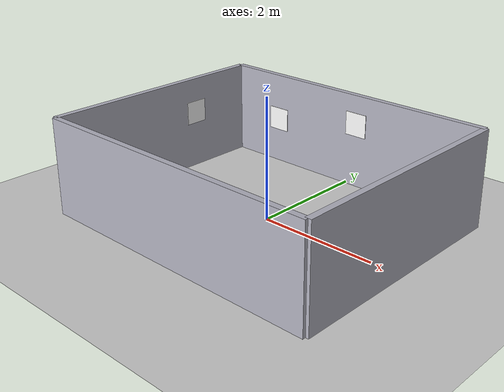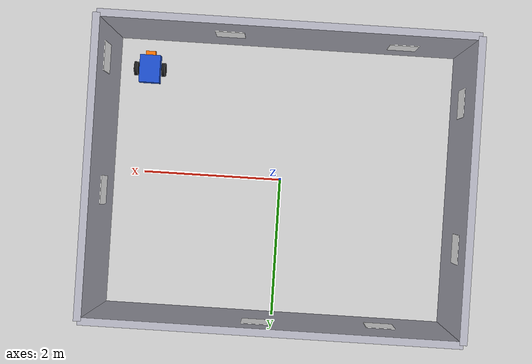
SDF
<?xml version="1.0" ?>
<sdf version="1.10">
  <world name="pf_room">

    <physics name="1ms" type="ignored">
      <max_step_size>0.001</max_step_size>
      <real_time_factor>1.0</real_time_factor>
    </physics>

    <plugin filename="gz-sim-physics-system"
            name="gz::sim::systems::Physics"/>
    <plugin filename="gz-sim-user-commands-system"
            name="gz::sim::systems::UserCommands"/>
    <plugin filename="gz-sim-scene-broadcaster-system"
            name="gz::sim::systems::SceneBroadcaster"/>
    <plugin filename="gz-sim-sensors-system"
            name="gz::sim::systems::Sensors">
      <render_engine>ogre2</render_engine>
    </plugin>

    <plugin filename="gz-sim-triggered-publisher-system" name="gz::sim::systems::TriggeredPublisher">
      <input type="gz.msgs.Int32" topic="/keyboard/keypress"><match field="data">16777235</match></input> <!-- Up -->
      <output type="gz.msgs.Twist" topic="/cmd_vel">linear: {x: 0.5}, angular: {z: 0.0}</output>
    </plugin>
    <plugin filename="gz-sim-triggered-publisher-system" name="gz::sim::systems::TriggeredPublisher">
      <input type="gz.msgs.Int32" topic="/keyboard/keypress"><match field="data">16777237</match></input> <!-- Down -->
      <output type="gz.msgs.Twist" topic="/cmd_vel">linear: {x: -0.5}, angular: {z: 0.0}</output>
    </plugin>
    <plugin filename="gz-sim-triggered-publisher-system" name="gz::sim::systems::TriggeredPublisher">
      <input type="gz.msgs.Int32" topic="/keyboard/keypress"><match field="data">16777234</match></input> <!-- Left -->
      <output type="gz.msgs.Twist" topic="/cmd_vel">linear: {x: 0.0}, angular: {z: 0.6}</output>
    </plugin>
    <plugin filename="gz-sim-triggered-publisher-system" name="gz::sim::systems::TriggeredPublisher">
      <input type="gz.msgs.Int32" topic="/keyboard/keypress"><match field="data">16777236</match></input> <!-- Right -->
      <output type="gz.msgs.Twist" topic="/cmd_vel">linear: {x: 0.0}, angular: {z: -0.6}</output>
    </plugin>
    <plugin filename="gz-sim-triggered-publisher-system" name="gz::sim::systems::TriggeredPublisher">
      <input type="gz.msgs.Int32" topic="/keyboard/keypress"><match field="data">32</match></input> <!-- Space = stop -->
      <output type="gz.msgs.Twist" topic="/cmd_vel">linear: {x: 0.0}, angular: {z: 0.0}</output>
    </plugin>

    <light type="directional" name="sun">
      <cast_shadows>true</cast_shadows>
      <pose>0 0 10 0 0 0</pose>
      <diffuse>0.9 0.9 0.9 1</diffuse>
      <specular>0.2 0.2 0.2 1</specular>
      <direction>-0.3 0.2 -0.9</direction>
    </light>

    <!-- ground -->
    <model name="ground_plane">
      <static>true</static>
      <link name="link">
        <collision name="collision">
          <geometry><plane><normal>0 0 1</normal><size>20 20</size></plane></geometry>
        </collision>
        <visual name="visual">
          <geometry><plane><normal>0 0 1</normal><size>20 20</size></plane></geometry>
          <material>
            <ambient>0.8 0.8 0.8 1</ambient>
            <diffuse>0.8 0.8 0.8 1</diffuse>
          </material>
        </visual>
      </link>
    </model>

    <!-- ============ ROOM: 4 walls, interior 5 x 4 m, height 1.6 m ============ -->
    <model name="room">
      <static>true</static>
      <link name="walls">
        <!-- left wall  (x = -2.5), right wall (x = +2.5) -->
        <collision name="c_left"><pose>-2.5 0 0.8 0 0 0</pose>
          <geometry><box><size>0.1 4 1.6</size></box></geometry></collision>
        <visual name="v_left"><pose>-2.5 0 0.8 0 0 0</pose>
          <geometry><box><size>0.1 4 1.6</size></box></geometry>
          <material><ambient>0.7 0.7 0.75 1</ambient><diffuse>0.7 0.7 0.75 1</diffuse></material></visual>

        <collision name="c_right"><pose>2.5 0 0.8 0 0 0</pose>
          <geometry><box><size>0.1 4 1.6</size></box></geometry></collision>
        <visual name="v_right"><pose>2.5 0 0.8 0 0 0</pose>
          <geometry><box><size>0.1 4 1.6</size></box></geometry>
          <material><ambient>0.7 0.7 0.75 1</ambient><diffuse>0.7 0.7 0.75 1</diffuse></material></visual>

        <!-- front wall (y = -2), back wall (y = +2) -->
        <collision name="c_front"><pose>0 -2 0.8 0 0 0</pose>
          <geometry><box><size>5 0.1 1.6</size></box></geometry></collision>
        <visual name="v_front"><pose>0 -2 0.8 0 0 0</pose>
          <geometry><box><size>5 0.1 1.6</size></box></geometry>
          <material><ambient>0.7 0.7 0.75 1</ambient><diffuse>0.7 0.7 0.75 1</diffuse></material></visual>

        <collision name="c_back"><pose>0 2 0.8 0 0 0</pose>
          <geometry><box><size>5 0.1 1.6</size></box></geometry></collision>
        <visual name="v_back"><pose>0 2 0.8 0 0 0</pose>
          <geometry><box><size>5 0.1 1.6</size></box></geometry>
          <material><ambient>0.7 0.7 0.75 1</ambient><diffuse>0.7 0.7 0.75 1</diffuse></material></visual>
      </link>
    </model>

    <!-- LEFT wall x=-2.5 (face +x): yaw 0 -->
    <include><name>tag1</name><uri>model://aruco_marker</uri><pose>-2.44 -1.2 0.80 0 0 0</pose></include>
    <include><name>tag2</name><uri>model://aruco_marker</uri><pose>-2.44  0.8 1.00 0 0 0</pose></include>
    <!-- RIGHT wall x=+2.5 (face -x): yaw pi -->
    <include><name>tag3</name><uri>model://aruco_marker</uri><pose>2.44  0.3 0.75 0 0 3.14159</pose></include>
    <include><name>tag4</name><uri>model://aruco_marker</uri><pose>2.44 -1.5 1.05 0 0 3.14159</pose></include>
    <!-- FRONT wall y=-2 (face +y): yaw pi/2 -->
    <include><name>tag5</name><uri>model://aruco_marker</uri><pose>-1.60 -1.94 0.70 0 0 1.5708</pose></include>
    <include><name>tag6</name><uri>model://aruco_marker</uri><pose> 0.80 -1.94 0.90 0 0 1.5708</pose></include>
    <!-- BACK wall y=+2 (face -y): yaw -pi/2 -->
    <include><name>tag7</name><uri>model://aruco_marker</uri><pose> 0.20  1.94 1.10 0 0 -1.5708</pose></include>
    <include><name>tag8</name><uri>model://aruco_marker</uri><pose>-1.50  1.94 0.80 0 0 -1.5708</pose></include>

    <include>
      <name>robot</name>
      <uri>model://robot</uri>
      <pose>2.0 -1.5 0.1 0 0 -1.5708</pose>
    </include>

  </world>
</sdf>

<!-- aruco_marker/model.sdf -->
<sdf version="1.10">
  <model name="aruco_marker">
    <static>true</static>
    <link name="link">
      <visual name="marker">
        <geometry><box><size>0.01 0.4 0.4</size></box></geometry>
        <material>
          <ambient>1 1 1 1</ambient>
          <diffuse>1 1 1 1</diffuse>
          <specular>0 0 0 1</specular>
          <pbr>
            <metal>
              <albedo_map>materials/textures/aruco_0.png</albedo_map>
              <metalness>0</metalness>
              <roughness>1</roughness>
            </metal>
          </pbr>
        </material>
      </visual>
    </link>
  </model>
</sdf>

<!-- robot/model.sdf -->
<sdf version="1.10">
  <model name="robot">

    <link name="base_link">
      <inertial>
        <mass>5.0</mass>
        <inertia><ixx>0.08</ixx><iyy>0.1</iyy><izz>0.1</izz>
                 <ixy>0</ixy><ixz>0</ixz><iyz>0</iyz></inertia>
      </inertial>
      <collision name="col"><geometry><box><size>0.4 0.3 0.15</size></box></geometry></collision>
      <!-- main body — blue -->
      <visual name="vis"><geometry><box><size>0.4 0.3 0.15</size></box></geometry>
        <material><ambient>0.1 0.3 0.8 1</ambient><diffuse>0.1 0.3 0.8 1</diffuse></material></visual>
      <!-- orange nose bump — marks the forward (+X) face -->
      <visual name="nose">
        <pose>0.23 0 0 0 0 0</pose>
        <geometry><box><size>0.06 0.14 0.08</size></box></geometry>
        <material><ambient>1.0 0.45 0.0 1</ambient><diffuse>1.0 0.45 0.0 1</diffuse></material>
      </visual>

      <!-- forward-facing camera at the front of the chassis -->
      <sensor name="camera" type="camera">
        <pose>0.2 0 0.05 0 0 0</pose>
        <always_on>1</always_on>
        <update_rate>30</update_rate>
        <topic>camera</topic>
        <camera>
          <horizontal_fov>2.0</horizontal_fov>
          <image><width>640</width><height>480</height><format>R8G8B8</format></image>
          <clip><near>0.05</near><far>15</far></clip>
        </camera>
      </sensor>
    </link>

    <!-- left wheel -->
    <link name="left_wheel">
      <pose>0 0.2 0 -1.5708 0 0</pose>
      <inertial><mass>0.5</mass>
        <inertia><ixx>0.001</ixx><iyy>0.001</iyy><izz>0.001</izz>
                 <ixy>0</ixy><ixz>0</ixz><iyz>0</iyz></inertia></inertial>
      <collision name="col"><geometry><cylinder><radius>0.1</radius><length>0.05</length></cylinder></geometry></collision>
      <visual name="vis"><geometry><cylinder><radius>0.1</radius><length>0.05</length></cylinder></geometry>
        <material><ambient>0.1 0.1 0.1 1</ambient><diffuse>0.1 0.1 0.1 1</diffuse></material></visual>
    </link>
    <!-- right wheel -->
    <link name="right_wheel">
      <pose>0 -0.2 0 -1.5708 0 0</pose>
      <inertial><mass>0.5</mass>
        <inertia><ixx>0.001</ixx><iyy>0.001</iyy><izz>0.001</izz>
                 <ixy>0</ixy><ixz>0</ixz><iyz>0</iyz></inertia></inertial>
      <collision name="col"><geometry><cylinder><radius>0.1</radius><length>0.05</length></cylinder></geometry></collision>
      <visual name="vis"><geometry><cylinder><radius>0.1</radius><length>0.05</length></cylinder></geometry>
        <material><ambient>0.1 0.1 0.1 1</ambient><diffuse>0.1 0.1 0.1 1</diffuse></material></visual>
    </link>
    <!-- front + rear low-friction casters: stable 4-point base, bottoms
         coplanar with the wheels (center z 0.04 world, radius 0.04). -->
    <link name="caster_front">
      <pose>0.15 0 -0.06 0 0 0</pose>
      <inertial><mass>0.1</mass>
        <inertia><ixx>0.0001</ixx><iyy>0.0001</iyy><izz>0.0001</izz>
                 <ixy>0</ixy><ixz>0</ixz><iyz>0</iyz></inertia></inertial>
      <collision name="col"><geometry><sphere><radius>0.04</radius></sphere></geometry>
        <surface><friction><ode><mu>0.0</mu><mu2>0.0</mu2></ode></friction></surface></collision>
      <visual name="vis"><geometry><sphere><radius>0.04</radius></sphere></geometry></visual>
    </link>
    <link name="caster_rear">
      <pose>-0.15 0 -0.06 0 0 0</pose>
      <inertial><mass>0.1</mass>
        <inertia><ixx>0.0001</ixx><iyy>0.0001</iyy><izz>0.0001</izz>
                 <ixy>0</ixy><ixz>0</ixz><iyz>0</iyz></inertia></inertial>
      <collision name="col"><geometry><sphere><radius>0.04</radius></sphere></geometry>
        <surface><friction><ode><mu>0.0</mu><mu2>0.0</mu2></ode></friction></surface></collision>
      <visual name="vis"><geometry><sphere><radius>0.04</radius></sphere></geometry></visual>
    </link>

    <joint name="left_wheel_joint" type="revolute">
      <parent>base_link</parent><child>left_wheel</child>
      <axis><xyz>0 0 1</xyz><limit><lower>-1e16</lower><upper>1e16</upper></limit></axis>
    </joint>
    <joint name="right_wheel_joint" type="revolute">
      <parent>base_link</parent><child>right_wheel</child>
      <axis><xyz>0 0 1</xyz><limit><lower>-1e16</lower><upper>1e16</upper></limit></axis>
    </joint>
    <joint name="caster_front_joint" type="ball">
      <parent>base_link</parent><child>caster_front</child>
    </joint>
    <joint name="caster_rear_joint" type="ball">
      <parent>base_link</parent><child>caster_rear</child>
    </joint>

    <!-- differential drive: subscribes /cmd_vel, publishes /odom -->
    <plugin filename="gz-sim-diff-drive-system" name="gz::sim::systems::DiffDrive">
      <left_joint>left_wheel_joint</left_joint>
      <right_joint>right_wheel_joint</right_joint>
      <wheel_separation>0.4</wheel_separation>
      <wheel_radius>0.1</wheel_radius>
      <odom_publish_frequency>30</odom_publish_frequency>
      <topic>cmd_vel</topic>
      <odom_topic>odom</odom_topic>
      <frame_id>odom</frame_id>
      <child_frame_id>base_link</child_frame_id>
    </plugin>

    <!-- GROUND TRUTH: publishes the robot's true world pose on /model/robot/pose
         (for verifying the filter estimate in RViz; not used by the filter). -->
    <plugin filename="gz-sim-pose-publisher-system" name="gz::sim::systems::PosePublisher">
      <publish_model_pose>true</publish_model_pose>
      <publish_link_pose>false</publish_link_pose>
      <publish_visual_pose>false</publish_visual_pose>
      <publish_collision_pose>false</publish_collision_pose>
      <publish_sensor_pose>false</publish_sensor_pose>
      <publish_nested_model_pose>false</publish_nested_model_pose>
      <use_pose_vector_msg>false</use_pose_vector_msg>
      <update_frequency>30</update_frequency>
    </plugin>

  </model>
</sdf>
